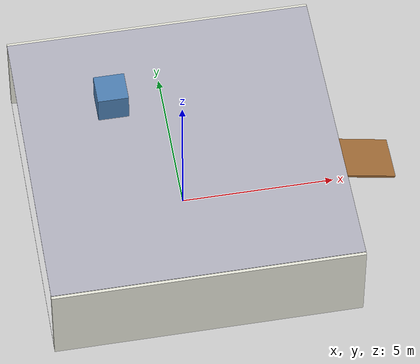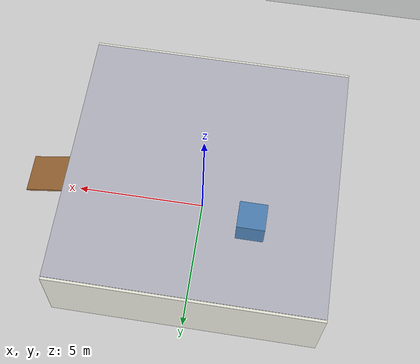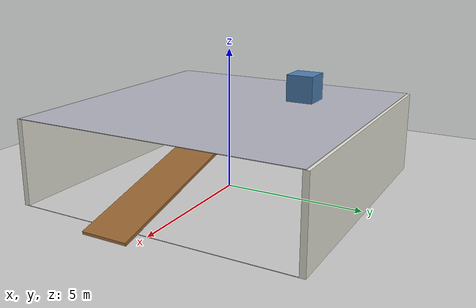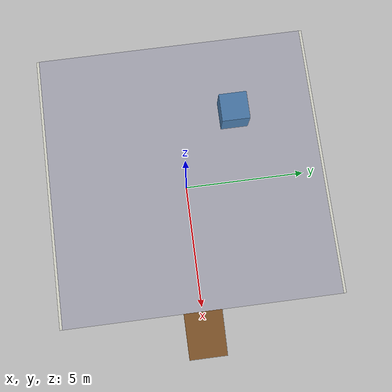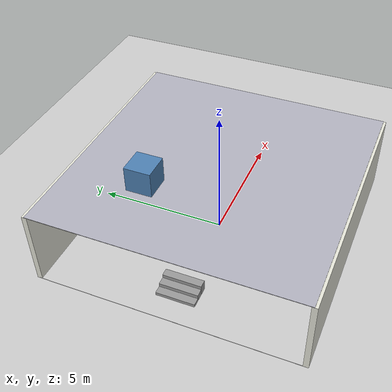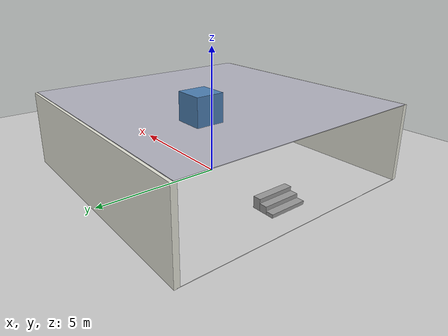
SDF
<?xml version="1.0" ?>
<sdf version="1.6">
  <world name="multi_floor">

    <include><uri>model://sun</uri></include>
    <include><uri>model://ground_plane</uri></include>

    <physics type="ode">
      <max_step_size>0.001</max_step_size>
      <real_time_factor>1.0</real_time_factor>
      <real_time_update_rate>1000</real_time_update_rate>
    </physics>

    <!-- ===== 一楼 ===== -->
    <!-- 地板 -->
    <model name="floor_1">
      <static>true</static>
      <pose>0 0 0.01 0 0 0</pose>
      <link name="link">
        <collision name="collision"><geometry><box><size>10 10 0.02</size></box></geometry></collision>
        <visual name="visual"><geometry><box><size>10 10 0.02</size></box></geometry>
          <material><ambient>0.8 0.8 0.8 1</ambient></material>
        </visual>
      </link>
    </model>

    <!-- 一楼墙壁 -->
    <model name="f1_wall_n">
      <static>true</static>
      <pose>0 5 1.5 0 0 0</pose>
      <link name="link">
        <collision name="collision"><geometry><box><size>10 0.2 3.0</size></box></geometry></collision>
        <visual name="visual"><geometry><box><size>10 0.2 3.0</size></box></geometry>
          <material><ambient>0.9 0.9 0.85 1</ambient></material>
        </visual>
      </link>
    </model>

    <model name="f1_wall_s">
      <static>true</static>
      <pose>0 -5 1.5 0 0 0</pose>
      <link name="link">
        <collision name="collision"><geometry><box><size>10 0.2 3.0</size></box></geometry></collision>
        <visual name="visual"><geometry><box><size>10 0.2 3.0</size></box></geometry>
          <material><ambient>0.9 0.9 0.85 1</ambient></material>
        </visual>
      </link>
    </model>

    <!-- ===== 斜坡 (连接一楼和二楼) ===== -->
    <model name="ramp">
      <static>true</static>
      <pose>4 0 1.5 0 0.25 0</pose>
      <link name="link">
        <collision name="collision"><geometry><box><size>6 1.5 0.1</size></box></geometry>
          <surface><friction><ode><mu>1.0</mu><mu2>1.0</mu2></ode></friction></surface>
        </collision>
        <visual name="visual"><geometry><box><size>6 1.5 0.1</size></box></geometry>
          <material><ambient>0.6 0.4 0.2 1</ambient></material>
        </visual>
      </link>
    </model>

    <!-- ===== 二楼 ===== -->
    <model name="floor_2">
      <static>true</static>
      <pose>0 0 3.01 0 0 0</pose>
      <link name="link">
        <collision name="collision"><geometry><box><size>10 10 0.02</size></box></geometry></collision>
        <visual name="visual"><geometry><box><size>10 10 0.02</size></box></geometry>
          <material><ambient>0.7 0.7 0.75 1</ambient></material>
        </visual>
      </link>
    </model>

    <!-- 二楼障碍物 -->
    <model name="f2_obstacle_1">
      <static>true</static>
      <pose>-2 2 3.5 0 0 0</pose>
      <link name="link">
        <collision name="collision"><geometry><box><size>1 1 1.0</size></box></geometry></collision>
        <visual name="visual"><geometry><box><size>1 1 1.0</size></box></geometry>
          <material><ambient>0.3 0.5 0.7 1</ambient></material>
        </visual>
      </link>
    </model>

    <!-- ===== 台阶 ===== -->
    <model name="stairs">
      <static>true</static>
      <pose>-4 0 0 0 0 0</pose>
      <link name="link">
        <!-- 5级台阶，每级 0.15m 高，0.3m 深 -->
        <collision name="step1"><geometry><box><size>0.3 1.5 0.15</size></box></geometry>
          <pose>0 0 0.075 0 0 0</pose>
        </collision>
        <visual name="step1"><geometry><box><size>0.3 1.5 0.15</size></box></geometry>
          <pose>0 0 0.075 0 0 0</pose>
          <material><ambient>0.6 0.6 0.6 1</ambient></material>
        </visual>

        <collision name="step2"><geometry><box><size>0.3 1.5 0.30</size></box></geometry>
          <pose>0.3 0 0.15 0 0 0</pose>
        </collision>
        <visual name="step2"><geometry><box><size>0.3 1.5 0.30</size></box></geometry>
          <pose>0.3 0 0.15 0 0 0</pose>
          <material><ambient>0.6 0.6 0.6 1</ambient></material>
        </visual>

        <collision name="step3"><geometry><box><size>0.3 1.5 0.45</size></box></geometry>
          <pose>0.6 0 0.225 0 0 0</pose>
        </collision>
        <visual name="step3"><geometry><box><size>0.3 1.5 0.45</size></box></geometry>
          <pose>0.6 0 0.225 0 0 0</pose>
          <material><ambient>0.6 0.6 0.6 1</ambient></material>
        </visual>
      </link>
    </model>

  </world>
</sdf>
